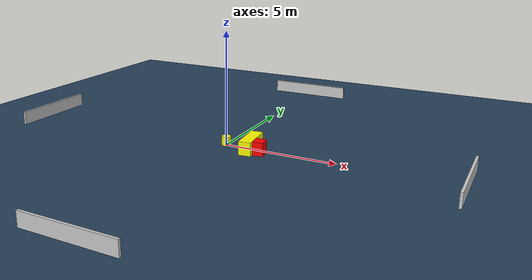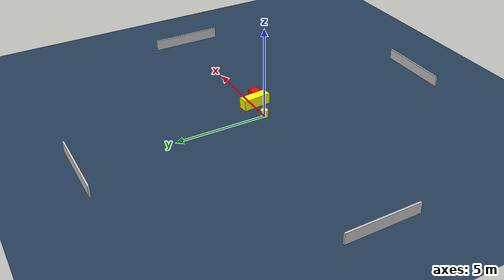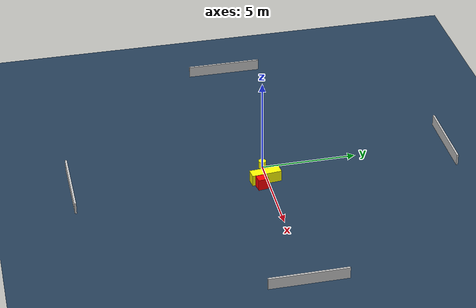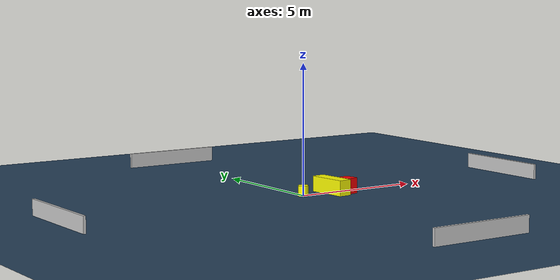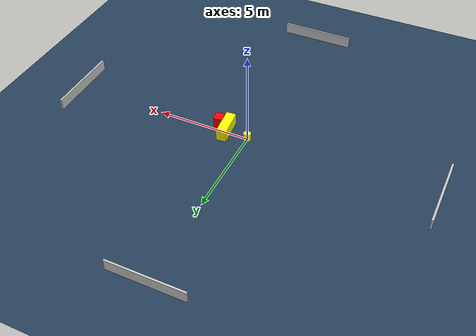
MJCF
<?xml version="1.0" ?>
<mujoco model="generated_environment">
  <option timestep="0.01" integrator="RK4" cone="elliptic"/>
  <default>
    <geom density="1"/>
  </default>
  <asset>
    <texture builtin="gradient" height="3072" name="skybox" rgb1="0.3 0.5 0.7" rgb2="0 0 0" type="skybox" width="512"/>
    <texture builtin="checker" height="300" name="groundplane" rgb1="0.2 0.3 0.4" rgb2="0.1 0.2 0.3" type="2d" width="300"/>
    <material name="groundplane" reflectance="0.2" texrepeat="5 5" texture="groundplane"/>
  </asset>
  <worldbody>
    <light dir="0 0 -1" directional="true" pos="0 0 1.5"/>
    <geom condim="3" friction="0.5 0.005 0.001" material="groundplane" name="floor" pos="0 0 0" size="0 0 0.05" type="plane"/>
    <body name="walls">
      <geom name="wall_1" condim="4" pos="-10.0 0.0 0.3" rgba="0.800000011920929 0.800000011920929 0.800000011920929 1.0" size="0.05 2.0 0.3" type="box"/>
      <geom name="wall_2" condim="4" pos="10.0 0.0 0.3" rgba="0.800000011920929 0.800000011920929 0.800000011920929 1.0" size="0.05 2.0 0.3" type="box"/>
      <geom name="wall_3" condim="4" pos="0.0 -10.0 0.3" rgba="0.800000011920929 0.800000011920929 0.800000011920929 1.0" size="2.0 0.05 0.3" type="box"/>
      <geom name="wall_4" condim="4" pos="0.0 10.0 0.3" rgba="0.800000011920929 0.800000011920929 0.800000011920929 1.0" size="2.0 0.05 0.3" type="box"/>
    </body>
    <body name="robot">
      <joint name="joint_x" type="slide" pos="0 0 0" axis="1 0 0"/>
      <joint name="joint_y" type="slide" pos="0 0 0" axis="0 1 0"/>
      <geom name="robot" type="cylinder" pos="0.0 0.0 0.2" size="0.2 0.2 0.0" mass="5.0" friction="1.0 0.005 0.0001" condim="4" rgba="1.0 1.0 0.0 1.0"/>
    </body>
    <body name="obstacle_1_movable">
      <geom name="obstacle_1_movable" condim="4" pos="1.24333418216927 -0.10673513748980332 0.3" euler="0 0 275.5700634907784" friction="0.0 0.005 0.001" rgba="1.0 1.0 0.0 1.0" size="0.7850813581744565 0.2639392275649179 0.3" type="box" mass="0.1"/>
      <joint type="free"/>
    </body>
    <body name="obstacle_2_static">
      <geom name="obstacle_2_static" condim="4" pos="1.7873354636062317 -0.4032956362958152 0.3" euler="0 0 188.25594057270837" friction="0.0 0.005 0.001" rgba="1.0 0.0 0.0 1.0" size="0.22861661453795176 0.27313735202406525 0.3" type="box"/>
    </body>
  </worldbody>
  <actuator>
    <motor name="actuator_x" joint="joint_x" gear="1" ctrlrange="-1 1"/>
    <motor name="actuator_y" joint="joint_y" gear="1" ctrlrange="-1 1"/>
  </actuator>
</mujoco>
